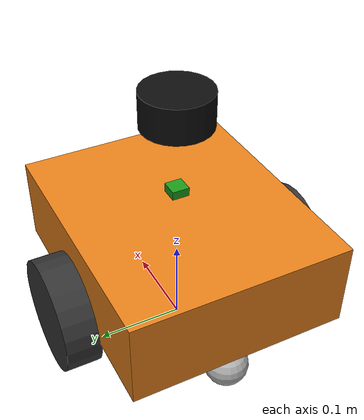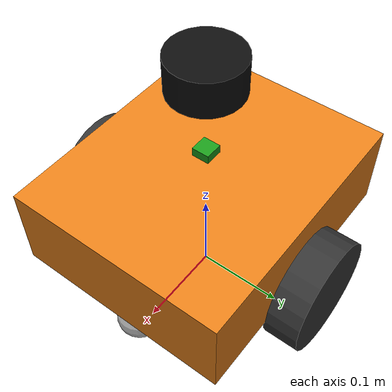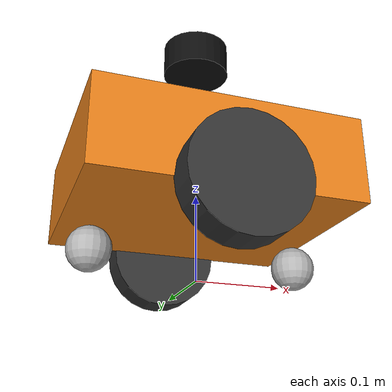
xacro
<?xml version="1.0"?>
<robot name="warehouse_robot" xmlns:xacro="http://www.ros.org/wiki/xacro">

  <xacro:property name="PI" value="3.14159265359"/>

  <!-- Chassis dimensions -->
  <xacro:property name="chassis_length" value="0.30"/>
  <xacro:property name="chassis_width"  value="0.25"/>
  <xacro:property name="chassis_height" value="0.10"/>
  <xacro:property name="chassis_mass"   value="4.0"/>

  <!-- Drive wheel dimensions -->
  <xacro:property name="wheel_radius"  value="0.065"/>
  <xacro:property name="wheel_width"   value="0.040"/>
  <xacro:property name="wheel_mass"    value="0.5"/>

  <!-- Wheel separation (centre-to-centre along Y) -->
  <xacro:property name="wheel_separation" value="0.285"/>

  <!-- Caster ball dimensions -->
  <xacro:property name="caster_radius" value="0.025"/>
  <xacro:property name="caster_mass"   value="0.1"/>

  <!-- Sensor positions relative to base_link -->
  <xacro:property name="lidar_x"   value="0.0"/>
  <xacro:property name="lidar_z"   value="0.12"/>
  <xacro:property name="imu_x"     value="0.0"/>
  <xacro:property name="imu_z"     value="0.07"/>

  <!-- ================================================================
       XACRO MACROS
       ================================================================ -->

  <!-- Macro: box inertia (for chassis) -->
  <xacro:macro name="box_inertia" params="m l w h">
    <inertial>
      <mass value="${m}"/>
      <inertia
        ixx="${(1.0/12.0)*m*(w*w + h*h)}"
        ixy="0.0" ixz="0.0"
        iyy="${(1.0/12.0)*m*(l*l + h*h)}"
        iyz="0.0"
        izz="${(1.0/12.0)*m*(l*l + w*w)}"/>
    </inertial>
  </xacro:macro>

  <!-- Macro: cylinder inertia around Y axis (for wheels) -->
  <xacro:macro name="cylinder_inertia_y" params="m r h">
    <inertial>
      <mass value="${m}"/>
      <inertia
        ixx="${(1.0/12.0)*m*(3.0*r*r + h*h)}"
        ixy="0.0" ixz="0.0"
        iyy="${0.5*m*r*r}"
        iyz="0.0"
        izz="${(1.0/12.0)*m*(3.0*r*r + h*h)}"/>
    </inertial>
  </xacro:macro>

  <!-- Macro: sphere inertia (for caster balls) -->
  <xacro:macro name="sphere_inertia" params="m r">
    <inertial>
      <mass value="${m}"/>
      <inertia
        ixx="${0.4*m*r*r}" ixy="0.0" ixz="0.0"
        iyy="${0.4*m*r*r}" iyz="0.0"
        izz="${0.4*m*r*r}"/>
    </inertial>
  </xacro:macro>

  <xacro:macro name="wheel" params="prefix y_pos">
    <link name="${prefix}_wheel_link">
      <!-- Inertia: solid cylinder, rotation axis = Y -->
      <xacro:cylinder_inertia_y m="${wheel_mass}" r="${wheel_radius}" h="${wheel_width}"/>
      <visual>
        <origin xyz="0 0 0" rpy="${PI/2} 0 0"/>
        <geometry>
          <cylinder radius="${wheel_radius}" length="${wheel_width}"/>
        </geometry>
        <material name="dark_grey">
          <color rgba="0.2 0.2 0.2 1.0"/>
        </material>
      </visual>
      <collision>
        <origin xyz="0 0 0" rpy="${PI/2} 0 0"/>
        <geometry>
          <cylinder radius="${wheel_radius}" length="${wheel_width}"/>
        </geometry>
      </collision>
    </link>

    <!-- Continuous joint: wheel rotates freely around Y axis -->
    <joint name="${prefix}_wheel_joint" type="continuous">
      <parent link="base_link"/>
      <child  link="${prefix}_wheel_link"/>
      <!-- Wheel centre is at height=wheel_radius from ground.
           base_link is at wheel_radius height (see base_footprint->base_link).
           So Z offset = 0. Y offset = ±wheel_separation/2 -->
      <origin xyz="0.0 ${y_pos} 0.0" rpy="0 0 0"/>
      <axis xyz="0 1 0"/>
      <!-- Dynamic limits for realistic simulation -->
      <dynamics damping="0.05" friction="0.3"/>
    </joint>
  </xacro:macro>

  <!-- Macro: caster (fixed sphere joint - no friction passive caster) -->
  <xacro:macro name="caster" params="prefix x_pos">
    <link name="${prefix}_caster_link">
      <xacro:sphere_inertia m="${caster_mass}" r="${caster_radius}"/>
      <visual>
        <origin xyz="0 0 0" rpy="0 0 0"/>
        <geometry>
          <sphere radius="${caster_radius}"/>
        </geometry>
        <material name="light_grey">
          <color rgba="0.7 0.7 0.7 1.0"/>
        </material>
      </visual>
      <collision>
        <origin xyz="0 0 0" rpy="0 0 0"/>
        <geometry>
          <sphere radius="${caster_radius}"/>
        </geometry>
        <!-- Zero friction so caster slides freely -->
        <surface>
          <friction>
            <ode>
              <mu>0.0</mu>
              <mu2>0.0</mu2>
            </ode>
          </friction>
        </surface>
      </collision>
    </link>

    <joint name="${prefix}_caster_joint" type="fixed">
      <parent link="base_link"/>
      <child  link="${prefix}_caster_link"/>
      <origin xyz="${x_pos} 0.0 ${-(wheel_radius - caster_radius)}" rpy="0 0 0"/>
    </joint>
  </xacro:macro>

  <!-- ================================================================
       LINKS
       ================================================================ -->

  <!-- base_footprint: virtual link at ground level, robot origin
       This is the standard mobile robot convention: base_footprint
       is the projection of base_link onto the ground plane. -->
  <link name="base_footprint"/>

  <!-- base_link: the main reference frame of the robot body.
       Located at the wheel axle height above the ground. -->
  <link name="base_link">
    <!-- Small inertia to satisfy physics engine (actual mass is in chassis) -->
    <inertial>
      <mass value="0.01"/>
      <inertia ixx="0.001" ixy="0.0" ixz="0.0"
               iyy="0.001" iyz="0.0" izz="0.001"/>
    </inertial>
  </link>

  <!-- chassis_link: main body of the robot (box geometry) -->
  <link name="chassis_link">
    <xacro:box_inertia m="${chassis_mass}"
                       l="${chassis_length}"
                       w="${chassis_width}"
                       h="${chassis_height}"/>
    <visual>
      <!-- Centre of chassis is at Z=chassis_height/2 above base_link -->
      <origin xyz="0 0 ${chassis_height/2}" rpy="0 0 0"/>
      <geometry>
        <box size="${chassis_length} ${chassis_width} ${chassis_height}"/>
      </geometry>
      <material name="orange">
        <color rgba="0.9 0.5 0.1 1.0"/>
      </material>
    </visual>
    <collision>
      <origin xyz="0 0 ${chassis_height/2}" rpy="0 0 0"/>
      <geometry>
        <box size="${chassis_length} ${chassis_width} ${chassis_height}"/>
      </geometry>
    </collision>
  </link>

  <!-- ================================================================
       JOINTS (fixed structural joints)
       ================================================================ -->

  <!-- base_footprint -> base_link: raise base_link by wheel radius -->
  <joint name="base_footprint_to_base" type="fixed">
    <parent link="base_footprint"/>
    <child  link="base_link"/>
    <origin xyz="0 0 ${wheel_radius}" rpy="0 0 0"/>
  </joint>

  <!-- base_link -> chassis_link: chassis sits on base_link -->
  <joint name="base_to_chassis" type="fixed">
    <parent link="base_link"/>
    <child  link="chassis_link"/>
    <origin xyz="0 0 0" rpy="0 0 0"/>
  </joint>

  <!-- ================================================================
       WHEELS (using xacro macro)
       ================================================================ -->
  <xacro:wheel prefix="left"  y_pos="${ wheel_separation/2}"/>
  <xacro:wheel prefix="right" y_pos="${-wheel_separation/2}"/>

  <!-- ================================================================
       CASTER WHEELS (front and rear for stability)
       ================================================================ -->
  <!-- Front caster: 0.12m forward from centre -->
  <xacro:caster prefix="caster_front" x_pos=" 0.12"/>
  <!-- Rear caster:  0.12m behind centre -->
  <xacro:caster prefix="caster_rear"  x_pos="-0.12"/>

  <!-- ================================================================
       LIDAR LINK & JOINT
       ================================================================ -->
  <link name="lidar_link">
    <inertial>
      <mass value="0.12"/>
      <inertia ixx="0.0001" ixy="0.0" ixz="0.0"
               iyy="0.0001" iyz="0.0" izz="0.0001"/>
    </inertial>
    <visual>
      <origin xyz="0 0 0" rpy="0 0 0"/>
      <geometry>
        <!-- Small cylinder representing the LiDAR unit -->
        <cylinder radius="0.04" length="0.04"/>
      </geometry>
      <material name="black">
        <color rgba="0.05 0.05 0.05 1.0"/>
      </material>
    </visual>
    <collision>
      <origin xyz="0 0 0" rpy="0 0 0"/>
      <geometry>
        <cylinder radius="0.04" length="0.04"/>
      </geometry>
    </collision>
  </link>

  <joint name="lidar_joint" type="fixed">
    <parent link="base_link"/>
    <child  link="lidar_link"/>
    <!-- LiDAR mounted on top of chassis, centred -->
    <origin xyz="${lidar_x} 0.0 ${chassis_height + lidar_z}" rpy="0 0 0"/>
  </joint>

  <!-- ================================================================
       IMU LINK & JOINT
       ================================================================ -->
  <link name="imu_link">
    <inertial>
      <mass value="0.01"/>
      <inertia ixx="0.00001" ixy="0.0" ixz="0.0"
               iyy="0.00001" iyz="0.0" izz="0.00001"/>
    </inertial>
    <visual>
      <origin xyz="0 0 0" rpy="0 0 0"/>
      <geometry>
        <box size="0.02 0.02 0.01"/>
      </geometry>
      <material name="green_pcb">
        <color rgba="0.1 0.6 0.1 1.0"/>
      </material>
    </visual>
    <collision>
      <origin xyz="0 0 0" rpy="0 0 0"/>
      <geometry>
        <box size="0.02 0.02 0.01"/>
      </geometry>
    </collision>
  </link>

  <joint name="imu_joint" type="fixed">
    <parent link="base_link"/>
    <child  link="imu_link"/>
    <!-- IMU mounted near centre of chassis, slightly lower than LiDAR -->
    <origin xyz="${imu_x} 0.0 ${chassis_height/2 + imu_z}" rpy="0 0 0"/>
  </joint>

  <!-- ================================================================
       GAZEBO HARMONIC PLUGINS
       ================================================================ -->

  <gazebo>
    <plugin filename="gz-sim-diff-drive-system"
            name="gz::sim::systems::DiffDrive">
      <left_joint>left_wheel_joint</left_joint>
      <right_joint>right_wheel_joint</right_joint>
      <wheel_separation>${wheel_separation}</wheel_separation>
      <wheel_radius>${wheel_radius}</wheel_radius>
      <odom_frame>odom</odom_frame>
      <robot_base_frame>base_footprint</robot_base_frame>
      <publish_odom>true</publish_odom>
      <publish_odom_tf>true</publish_odom_tf>
      <publish_wheel_tf>false</publish_wheel_tf>
      <!-- GZ-side topic names — bridged to ROS2 in launch file -->
      <topic>/cmd_vel</topic>
      <odom_topic>/odom</odom_topic>
      <!-- Twist covariance diagonal values -->
      <covariance_x>0.001</covariance_x>
      <covariance_y>0.001</covariance_y>
      <covariance_yaw>0.001</covariance_yaw>
    </plugin>
  </gazebo>

  <gazebo>
    <plugin filename="gz-sim-joint-state-publisher-system"
            name="gz::sim::systems::JointStatePublisher">
      <topic>/joint_states</topic>
      <joint_name>left_wheel_joint</joint_name>
      <joint_name>right_wheel_joint</joint_name>
    </plugin>
  </gazebo>

  <gazebo reference="imu_link">
    <sensor name="imu_sensor" type="imu">
      <always_on>true</always_on>
      <update_rate>100</update_rate>
      <visualize>true</visualize>
      <topic>/imu</topic>
      <imu>
        <angular_velocity>
          <x>
            <noise type="gaussian">
              <mean>0.0</mean>
              <stddev>2e-4</stddev>
            </noise>
          </x>
          <y>
            <noise type="gaussian">
              <mean>0.0</mean>
              <stddev>2e-4</stddev>
            </noise>
          </y>
          <z>
            <noise type="gaussian">
              <mean>0.0</mean>
              <stddev>2e-4</stddev>
            </noise>
          </z>
        </angular_velocity>
        <linear_acceleration>
          <x>
            <noise type="gaussian">
              <mean>0.0</mean>
              <stddev>1.7e-2</stddev>
            </noise>
          </x>
          <y>
            <noise type="gaussian">
              <mean>0.0</mean>
              <stddev>1.7e-2</stddev>
            </noise>
          </y>
          <z>
            <noise type="gaussian">
              <mean>0.0</mean>
              <stddev>1.7e-2</stddev>
            </noise>
          </z>
        </linear_acceleration>
      </imu>
    </sensor>
  </gazebo>

  <gazebo reference="lidar_link">
    <sensor name="lidar_sensor" type="gpu_lidar">
      <always_on>true</always_on>
      <update_rate>10</update_rate>
      <visualize>true</visualize>
      <topic>/scan</topic>
      <ray>
        <scan>
          <horizontal>
            <samples>360</samples>
            <resolution>1</resolution>
            <min_angle>-3.14159265359</min_angle>
            <max_angle>3.14159265359</max_angle>
          </horizontal>
        </scan>
        <range>
          <min>0.15</min>
          <max>12.0</max>
          <resolution>0.001</resolution>
        </range>
        <noise>
          <type>gaussian</type>
          <mean>0.0</mean>
          <stddev>0.01</stddev>
        </noise>
      </ray>
    </sensor>
  </gazebo>

  <gazebo reference="chassis_link">
    <material>
      <ambient>0.9 0.5 0.1 1</ambient>
      <diffuse>0.9 0.5 0.1 1</diffuse>
      <specular>0.2 0.2 0.2 1</specular>
    </material>
  </gazebo>
  <gazebo reference="left_wheel_link">
    <material>
      <ambient>0.1 0.1 0.1 1</ambient>
      <diffuse>0.1 0.1 0.1 1</diffuse>
    </material>
  </gazebo>
  <gazebo reference="right_wheel_link">
    <material>
      <ambient>0.1 0.1 0.1 1</ambient>
      <diffuse>0.1 0.1 0.1 1</diffuse>
    </material>
  </gazebo>
  <gazebo reference="lidar_link">
    <material>
      <ambient>0.05 0.05 0.05 1</ambient>
      <diffuse>0.05 0.05 0.05 1</diffuse>
    </material>
  </gazebo>

</robot>
